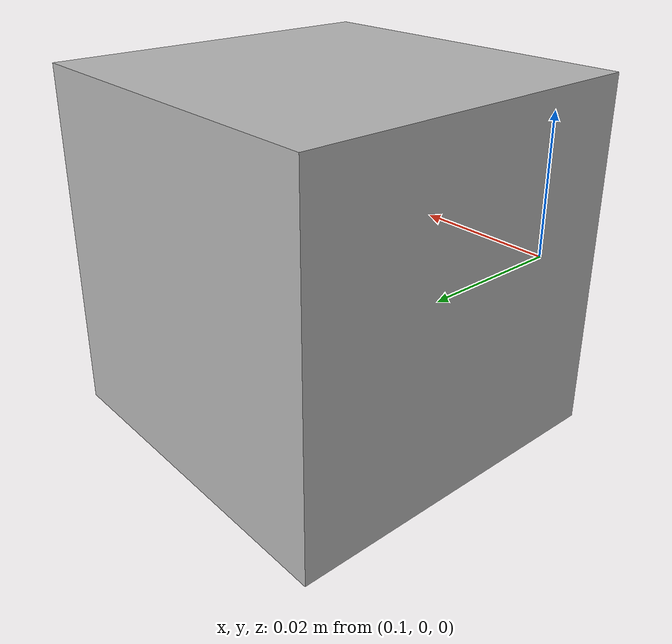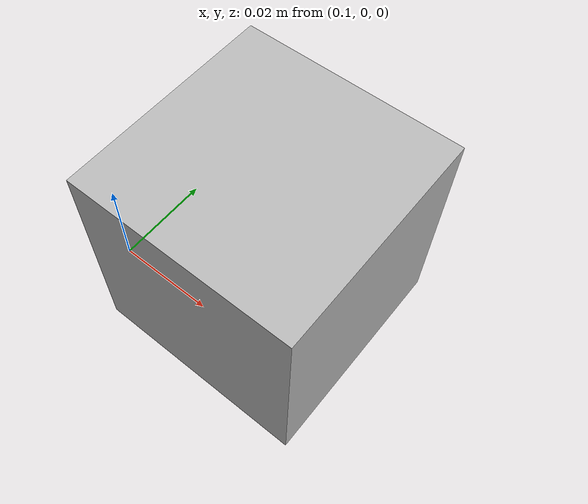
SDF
<?xml version="1.0" ?>
<!-- |    This document was autogenerated by xacro from /home/gilbert/workspaces/multiagent_simulation_ws/install/multiagent_simulation/share/multiagent_simulation/models/lidar/model.xacro | -->
<!-- |    EDITING THIS FILE BY HAND IS NOT RECOMMENDED                                 | -->
<sdf version="1.9">
  <model name="lidars">
    <static>true</static>
    <link name="lidars_link">
      <pose>0 0 0 0 0 0</pose>
      <kinematic>true</kinematic>
      <gravity>false</gravity>
      <inertial>
        <mass>0.0</mass>
        <inertia>
          <ixx>0.0</ixx>
          <ixy>0.0</ixy>
          <iyy>0.0</iyy>
          <iyz>0.0</iyz>
          <izz>0.0</izz>
        </inertia>
      </inertial>
    </link>
    <link name="lidar_1_link">
      <pose>0.12 0.02 0.0 0 1.57 0</pose>
      <kinematic>true</kinematic>
      <gravity>false</gravity>
      <inertial>
        <mass>0.0</mass>
        <inertia>
          <ixx>0.0</ixx>
          <ixy>0.0</ixy>
          <iyy>0.0</iyy>
          <iyz>0.0</iyz>
          <izz>0.0</izz>
        </inertia>
      </inertial>
      <visual name="visual">
        <geometry>
          <box>
            <size>0.05 0.05 0.05</size>
          </box>
        </geometry>
      </visual>
      <visual name="landmark">
        <geometry>
          <cylinder>
            <radius>0.01</radius>
            <length>0.005</length>
          </cylinder>
        </geometry>
        <pose>0.03 0 0 0 1.5708 0</pose>
        <material>
          <ambient>1 0 0 1</ambient>
          <diffuse>1 0 0 1</diffuse>
        </material>
      </visual>
      <sensor name="lidar_1" type="gpu_lidar">
        <gz_frame_id>lidar_1_link</gz_frame_id>
        <pose>0 0 0 0 0 0</pose>
        <update_rate>20</update_rate>
        <lidar>
          <scan>
            <horizontal>
              <samples>512</samples>
              <resolution>1</resolution>
              <min_angle>-3.14159</min_angle>
              <max_angle>3.14159</max_angle>
            </horizontal>
            <vertical>
              <samples>128</samples>
              <resolution>1</resolution>
              <min_angle>-0.785398</min_angle>
              <max_angle>0.785398</max_angle>
            </vertical>
          </scan>
          <range>
            <min>0.45</min>
            <max>50.0</max>
            <!--100m range is in ideal. In reality more like 50 m for most surfaces-->
            <resolution>0.001</resolution>
          </range>
          <noise>
            <type>gaussian</type>
            <mean>0.0</mean>
            <stddev>0.01</stddev>
            <bias_mean>0.0</bias_mean>
            <bias_stddev>0.001</bias_stddev>
          </noise>
        </lidar>
        <visualize>false</visualize>
      </sensor>
    </link>
    <joint name="lidar_1_joint" type="fixed">
      <parent>lidars_link</parent>
      <child>lidar_1_link</child>
      <preserve_fixed_joint>true</preserve_fixed_joint>
    </joint>
  </model>
</sdf>
